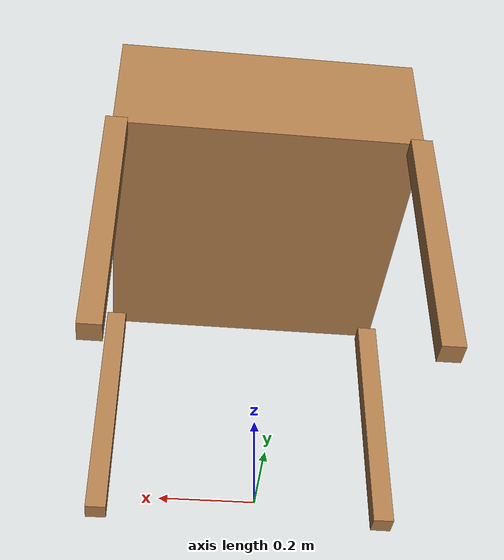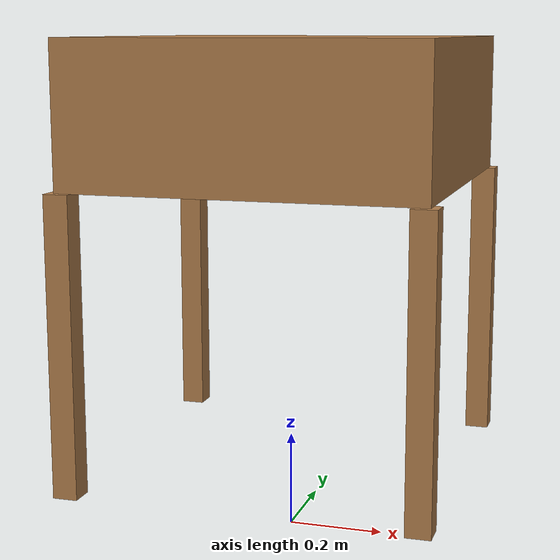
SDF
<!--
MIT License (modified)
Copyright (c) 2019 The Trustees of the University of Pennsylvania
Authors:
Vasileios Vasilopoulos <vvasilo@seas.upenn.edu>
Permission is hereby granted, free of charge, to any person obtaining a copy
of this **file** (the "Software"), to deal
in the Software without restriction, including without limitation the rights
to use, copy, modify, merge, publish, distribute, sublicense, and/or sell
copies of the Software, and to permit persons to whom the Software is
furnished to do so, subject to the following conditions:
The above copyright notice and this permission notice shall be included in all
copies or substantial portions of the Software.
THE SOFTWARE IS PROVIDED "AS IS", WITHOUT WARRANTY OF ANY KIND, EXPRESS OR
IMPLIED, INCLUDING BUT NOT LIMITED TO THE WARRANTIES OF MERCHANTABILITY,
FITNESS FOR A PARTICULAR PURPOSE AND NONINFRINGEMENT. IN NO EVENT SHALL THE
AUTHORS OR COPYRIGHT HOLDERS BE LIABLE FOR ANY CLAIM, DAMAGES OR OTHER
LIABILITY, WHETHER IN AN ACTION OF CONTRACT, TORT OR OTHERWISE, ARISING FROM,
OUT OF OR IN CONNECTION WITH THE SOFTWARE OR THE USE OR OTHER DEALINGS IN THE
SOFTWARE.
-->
<?xml version='1.0'?>

<sdf version='1.6'>
  <model name='table'>
    <link name='table_top'>
      <pose frame=''>0 0 0.75 0 0 0</pose> <!-- Adjusted z-coordinate to account for longer legs -->
      <inertial>
        <mass>200</mass>
        <inertia>
          <ixx>4.78</ixx>
          <ixy>0</ixy>
          <ixz>0</ixz>
          <iyy>6.26</iyy>
          <iyz>0</iyz>
          <izz>8.235</izz>
        </inertia>
        <pose frame=''>0 0 0.145 0 0 0</pose>
      </inertial>
      <gravity>1</gravity>
      <self_collide>0</self_collide>
      <kinematic>0</kinematic>

      <visual name='table_top_visual'>
        <pose frame=''>0 0 0.145 0 0 0</pose>
        <geometry>
          <box>
            <size>0.72 0.72 0.29</size>
          </box>
        </geometry>
        <material>
          <script>
            <uri>file://media/materials/scripts/gazebo.material</uri>
            <name>Gazebo/Wood</name>
          </script>
        </material>
        <cast_shadows>1</cast_shadows>
        <transparency>0</transparency>
      </visual>
      <collision name='table_top_collision'>
        <laser_retro>0</laser_retro>
        <pose frame=''>0 0 0.145 0 0 0</pose>
        <geometry>
          <box>
            <size>0.72 0.72 0.29</size>
          </box>
        </geometry>
        <surface>
          <friction>
            <ode>
              <mu>100</mu>
              <mu2>50</mu2>
            </ode>
          </friction>
        </surface>
      </collision>
    </link>

    <!-- Leg 1 -->
    <link name='leg1'>
      <pose frame=''>0.35 0.35 0.45 0 0 0</pose> <!-- Adjusted z-coordinate to account for new leg length -->
      <visual name='leg1_visual'>
        <geometry>
          <box>
            <size>0.05 0.05 0.6</size> <!-- Changed leg length to 0.6 -->
          </box>
        </geometry>
        <material>
          <script>
            <uri>file://media/materials/scripts/gazebo.material</uri>
            <name>Gazebo/Wood</name>
          </script>
        </material>
        <cast_shadows>1</cast_shadows>
        <transparency>0</transparency>
      </visual>
      <collision name='leg1_collision'>
        <geometry>
          <box>
            <size>0.05 0.05 0.6</size> <!-- Changed leg length to 0.6 -->
          </box>
        </geometry>
      </collision>
    </link>

    <!-- Leg 2 -->
    <link name='leg2'>
      <pose frame=''>-0.35 0.35 0.45 0 0 0</pose> <!-- Adjusted z-coordinate to account for new leg length -->
      <visual name='leg2_visual'>
        <geometry>
          <box>
            <size>0.05 0.05 0.6</size> <!-- Changed leg length to 0.6 -->
          </box>
        </geometry>
        <material>
          <script>
            <uri>file://media/materials/scripts/gazebo.material</uri>
            <name>Gazebo/Wood</name>
          </script>
        </material>
        <cast_shadows>1</cast_shadows>
        <transparency>0</transparency>
      </visual>
      <collision name='leg2_collision'>
        <geometry>
          <box>
            <size>0.05 0.05 0.6</size> <!-- Changed leg length to 0.6 -->
          </box>
        </geometry>
      </collision>
    </link>

    <!-- Leg 3 -->
    <link name='leg3'>
      <pose frame=''>0.35 -0.35 0.45 0 0 0</pose> <!-- Adjusted z-coordinate to account for new leg length -->
      <visual name='leg3_visual'>
        <geometry>
          <box>
            <size>0.05 0.05 0.6</size> <!-- Changed leg length to 0.6 -->
          </box>
        </geometry>
        <material>
          <script>
            <uri>file://media/materials/scripts/gazebo.material</uri>
            <name>Gazebo/Wood</name>
          </script>
        </material>
        <cast_shadows>1</cast_shadows>
        <transparency>0</transparency>
      </visual>
      <collision name='leg3_collision'>
        <geometry>
          <box>
            <size>0.05 0.05 0.6</size> <!-- Changed leg length to 0.6 -->
          </box>
        </geometry>
      </collision>
    </link>

    <!-- Leg 4 -->
    <link name='leg4'>
      <pose frame=''>-0.35 -0.35 0.45 0 0 0</pose> <!-- Adjusted z-coordinate to account for new leg length -->
      <visual name='leg4_visual'>
        <geometry>
          <box>
            <size>0.05 0.05 0.6</size> <!-- Changed leg length to 0.6 -->
          </box>
        </geometry>
        <material>
          <script>
            <uri>file://media/materials/scripts/gazebo.material</uri>
            <name>Gazebo/Wood</name>
          </script>
        </material>
        <cast_shadows>1</cast_shadows>
        <transparency>0</transparency>
      </visual>
      <collision name='leg4_collision'>
        <geometry>
          <box>
            <size>0.05 0.05 0.6</size> <!-- Changed leg length to 0.6 -->
          </box>
        </geometry>
      </collision>
    </link>

    <!-- Joints to attach legs to the table top -->
    <joint name='joint_leg1' type='fixed'>
      <parent>table_top</parent>
      <child>leg1</child>
      <pose frame=''>0.35 0.35 0.45 0 0 0</pose> <!-- Adjusted z-coordinate to account for new leg length -->
    </joint>
    <joint name='joint_leg2' type='fixed'>
      <parent>table_top</parent>
      <child>leg2</child>
      <pose frame=''>-0.35 0.35 0.45 0 0 0</pose> <!-- Adjusted z-coordinate to account for new leg length -->
    </joint>
    <joint name='joint_leg3' type='fixed'>
      <parent>table_top</parent>
      <child>leg3</child>
      <pose frame=''>0.35 -0.35 0.45 0 0 0</pose> <!-- Adjusted z-coordinate to account for new leg length -->
    </joint>
    <joint name='joint_leg4' type='fixed'>
      <parent>table_top</parent>
      <child>leg4</child>
      <pose frame=''>-0.35 -0.35 0.45 0 0 0</pose> <!-- Adjusted z-coordinate to account for new leg length -->
    </joint>

    <static>0</static>
    <allow_auto_disable>1</allow_auto_disable>
  </model>
</sdf>
